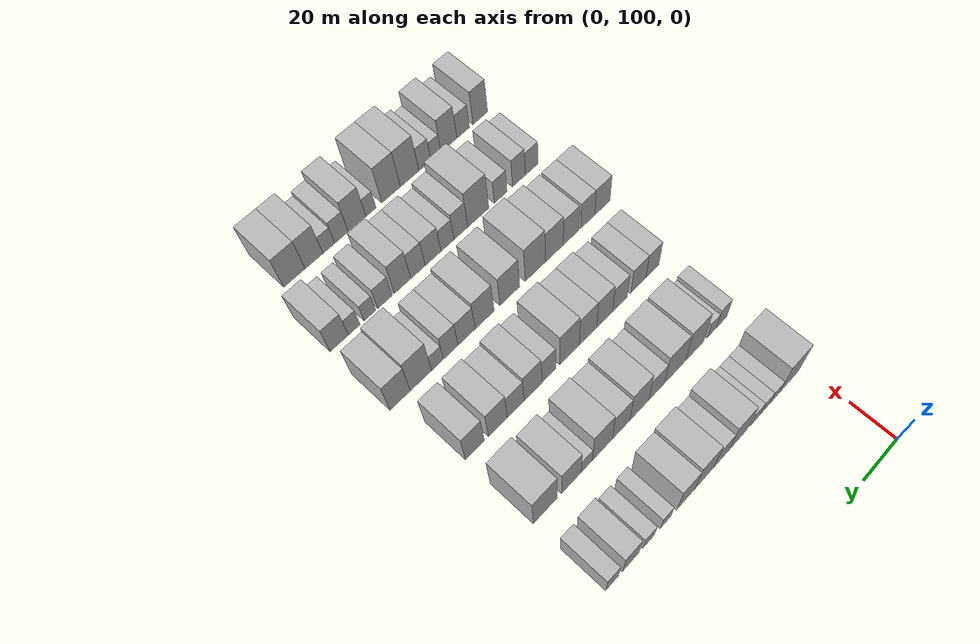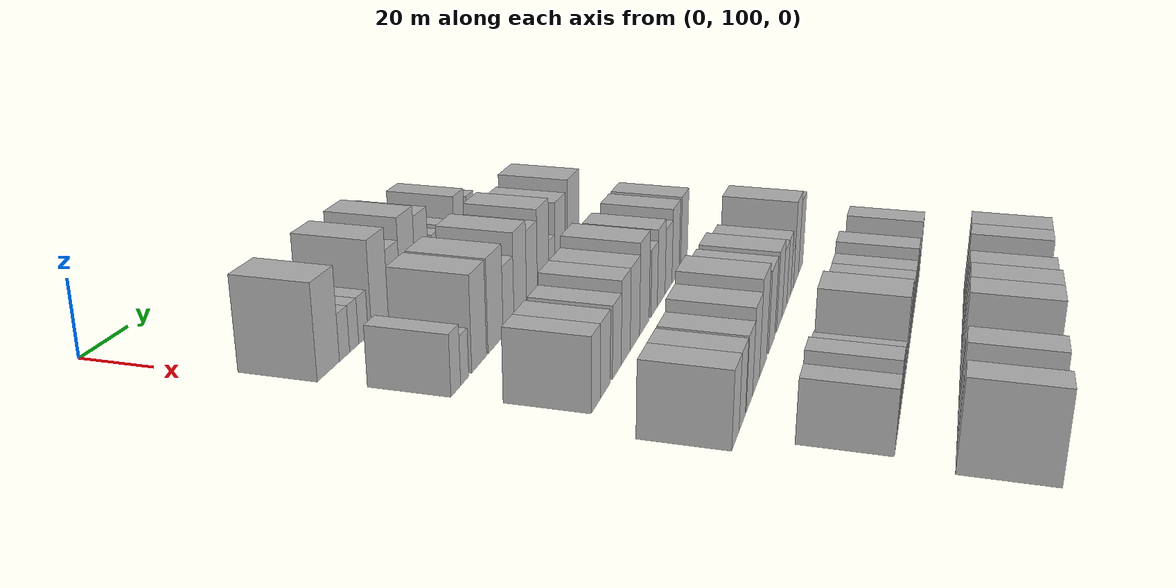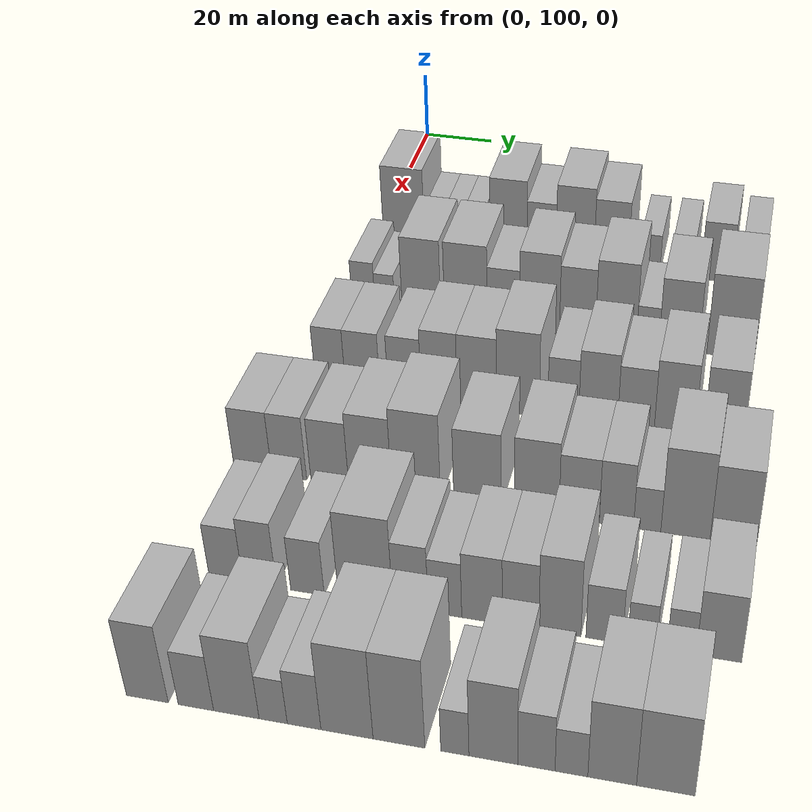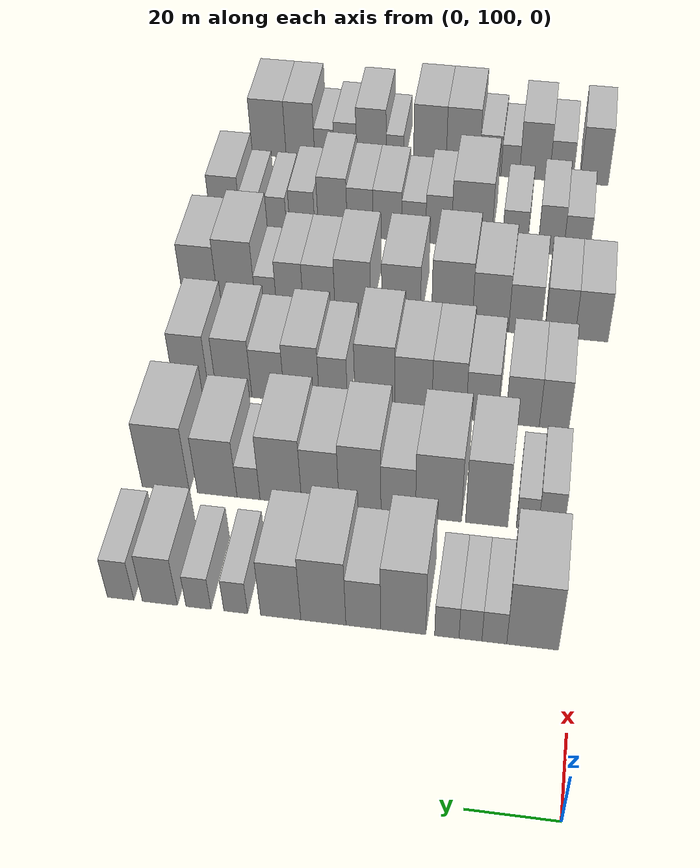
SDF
<sdf version="1.6">
 <world name="default">
  <model name="building_74">
   <static>1</static>
   <pose>50.0000 108.7821 0 0.000000 0.000000 0.000000</pose>
   <link name="link">
    <pose>0 0 12.00 0 0 0</pose>
    <collision name="collision"><geometry><box><size>20.0000 11.5517 24.0000</size></box></geometry></collision>
    <visual name="visual">
     <cast_shadows>0</cast_shadows>
     <geometry><box><size>20.0000 11.5517 24.0000</size></box></geometry>
     <material>
      <script>
       <uri>model://HANNAS_wall/materials/scripts</uri>
       <uri>model://HANNAS_wall/materials/textures</uri>
       <name>vrc/HANNAS_wall</name>
      </script>
     </material>
    </visual>
   </link>
  </model>
  <model name="building_75">
   <static>1</static>
   <pose>50.0000 117.3369 0 0.000000 0.000000 0.000000</pose>
   <link name="link">
    <pose>0 0 6.00 0 0 0</pose>
    <collision name="collision"><geometry><box><size>20.0000 5.5580 12.0000</size></box></geometry></collision>
    <visual name="visual">
     <cast_shadows>0</cast_shadows>
     <geometry><box><size>20.0000 5.5580 12.0000</size></box></geometry>
     <material>
      <script>
       <uri>model://HANNAS_wall/materials/scripts</uri>
       <uri>model://HANNAS_wall/materials/textures</uri>
       <name>vrc/HANNAS_wall</name>
      </script>
     </material>
    </visual>
   </link>
  </model>
  <model name="building_76">
   <static>1</static>
   <pose>50.0000 122.6863 0 0.000000 0.000000 0.000000</pose>
   <link name="link">
    <pose>0 0 6.00 0 0 0</pose>
    <collision name="collision"><geometry><box><size>20.0000 5.1408 12.0000</size></box></geometry></collision>
    <visual name="visual">
     <cast_shadows>0</cast_shadows>
     <geometry><box><size>20.0000 5.1408 12.0000</size></box></geometry>
     <material>
      <script>
       <uri>model://HANNAS_wall/materials/scripts</uri>
       <uri>model://HANNAS_wall/materials/textures</uri>
       <name>vrc/HANNAS_wall</name>
      </script>
     </material>
    </visual>
   </link>
  </model>
  <model name="building_77">
   <static>1</static>
   <pose>50.0000 128.0056 0 0.000000 0.000000 0.000000</pose>
   <link name="link">
    <pose>0 0 6.00 0 0 0</pose>
    <collision name="collision"><geometry><box><size>20.0000 5.4979 12.0000</size></box></geometry></collision>
    <visual name="visual">
     <cast_shadows>0</cast_shadows>
     <geometry><box><size>20.0000 5.4979 12.0000</size></box></geometry>
     <material>
      <script>
       <uri>model://HANNAS_wall/materials/scripts</uri>
       <uri>model://HANNAS_wall/materials/textures</uri>
       <name>vrc/HANNAS_wall</name>
      </script>
     </material>
    </visual>
   </link>
  </model>
  <model name="building_78">
   <static>1</static>
   <pose>50.0000 137.8556 0 0.000000 0.000000 0.000000</pose>
   <link name="link">
    <pose>0 0 12.00 0 0 0</pose>
    <collision name="collision"><geometry><box><size>20.0000 10.2020 24.0000</size></box></geometry></collision>
    <visual name="visual">
     <cast_shadows>0</cast_shadows>
     <geometry><box><size>20.0000 10.2020 24.0000</size></box></geometry>
     <material>
      <script>
       <uri>model://HANNAS_wall/materials/scripts</uri>
       <uri>model://HANNAS_wall/materials/textures</uri>
       <name>vrc/HANNAS_wall</name>
      </script>
     </material>
    </visual>
   </link>
  </model>
  <model name="building_79">
   <static>1</static>
   <pose>50.0000 146.9290 0 0.000000 0.000000 0.000000</pose>
   <link name="link">
    <pose>0 0 9.00 0 0 0</pose>
    <collision name="collision"><geometry><box><size>20.0000 7.9450 18.0000</size></box></geometry></collision>
    <visual name="visual">
     <cast_shadows>0</cast_shadows>
     <geometry><box><size>20.0000 7.9450 18.0000</size></box></geometry>
     <material>
      <script>
       <uri>model://HANNAS_wall/materials/scripts</uri>
       <uri>model://HANNAS_wall/materials/textures</uri>
       <name>vrc/HANNAS_wall</name>
      </script>
     </material>
    </visual>
   </link>
  </model>
  <model name="building_80">
   <static>1</static>
   <pose>50.0000 156.0578 0 0.000000 0.000000 0.000000</pose>
   <link name="link">
    <pose>0 0 12.00 0 0 0</pose>
    <collision name="collision"><geometry><box><size>20.0000 10.3124 24.0000</size></box></geometry></collision>
    <visual name="visual">
     <cast_shadows>0</cast_shadows>
     <geometry><box><size>20.0000 10.3124 24.0000</size></box></geometry>
     <material>
      <script>
       <uri>model://HANNAS_wall/materials/scripts</uri>
       <uri>model://HANNAS_wall/materials/textures</uri>
       <name>vrc/HANNAS_wall</name>
      </script>
     </material>
    </visual>
   </link>
  </model>
  <model name="building_81">
   <static>1</static>
   <pose>50.0000 165.8486 0 0.000000 0.000000 0.000000</pose>
   <link name="link">
    <pose>0 0 10.50 0 0 0</pose>
    <collision name="collision"><geometry><box><size>20.0000 9.2693 21.0000</size></box></geometry></collision>
    <visual name="visual">
     <cast_shadows>0</cast_shadows>
     <geometry><box><size>20.0000 9.2693 21.0000</size></box></geometry>
     <material>
      <script>
       <uri>model://HANNAS_wall/materials/scripts</uri>
       <uri>model://HANNAS_wall/materials/textures</uri>
       <name>vrc/HANNAS_wall</name>
      </script>
     </material>
    </visual>
   </link>
  </model>
  <model name="building_82">
   <static>1</static>
   <pose>50.0000 176.2390 0 0.000000 0.000000 0.000000</pose>
   <link name="link">
    <pose>0 0 6.00 0 0 0</pose>
    <collision name="collision"><geometry><box><size>20.0000 5.5116 12.0000</size></box></geometry></collision>
    <visual name="visual">
     <cast_shadows>0</cast_shadows>
     <geometry><box><size>20.0000 5.5116 12.0000</size></box></geometry>
     <material>
      <script>
       <uri>model://HANNAS_wall/materials/scripts</uri>
       <uri>model://HANNAS_wall/materials/textures</uri>
       <name>vrc/HANNAS_wall</name>
      </script>
     </material>
    </visual>
   </link>
  </model>
  <model name="building_83">
   <static>1</static>
   <pose>50.0000 184.8971 0 0.000000 0.000000 0.000000</pose>
   <link name="link">
    <pose>0 0 6.00 0 0 0</pose>
    <collision name="collision"><geometry><box><size>20.0000 5.8045 12.0000</size></box></geometry></collision>
    <visual name="visual">
     <cast_shadows>0</cast_shadows>
     <geometry><box><size>20.0000 5.8045 12.0000</size></box></geometry>
     <material>
      <script>
       <uri>model://HANNAS_wall/materials/scripts</uri>
       <uri>model://HANNAS_wall/materials/textures</uri>
       <name>vrc/HANNAS_wall</name>
      </script>
     </material>
    </visual>
   </link>
  </model>
  <model name="building_84">
   <static>1</static>
   <pose>50.0000 193.9030 0 0.000000 0.000000 0.000000</pose>
   <link name="link">
    <pose>0 0 9.00 0 0 0</pose>
    <collision name="collision"><geometry><box><size>20.0000 8.2074 18.0000</size></box></geometry></collision>
    <visual name="visual">
     <cast_shadows>0</cast_shadows>
     <geometry><box><size>20.0000 8.2074 18.0000</size></box></geometry>
     <material>
      <script>
       <uri>model://HANNAS_wall/materials/scripts</uri>
       <uri>model://HANNAS_wall/materials/textures</uri>
       <name>vrc/HANNAS_wall</name>
      </script>
     </material>
    </visual>
   </link>
  </model>
  <model name="building_85">
   <static>1</static>
   <pose>50.0000 203.1125 0 0.000000 0.000000 0.000000</pose>
   <link name="link">
    <pose>0 0 7.50 0 0 0</pose>
    <collision name="collision"><geometry><box><size>20.0000 6.2116 15.0000</size></box></geometry></collision>
    <visual name="visual">
     <cast_shadows>0</cast_shadows>
     <geometry><box><size>20.0000 6.2116 15.0000</size></box></geometry>
     <material>
      <script>
       <uri>model://HANNAS_wall/materials/scripts</uri>
       <uri>model://HANNAS_wall/materials/textures</uri>
       <name>vrc/HANNAS_wall</name>
      </script>
     </material>
    </visual>
   </link>
  </model>
  <model name="building_195">
   <static>1</static>
   <pose>82.0000 106.7155 0 0.000000 0.000000 0.000000</pose>
   <link name="link">
    <pose>0 0 7.50 0 0 0</pose>
    <collision name="collision"><geometry><box><size>20.0000 6.0641 15.0000</size></box></geometry></collision>
    <visual name="visual">
     <cast_shadows>0</cast_shadows>
     <geometry><box><size>20.0000 6.0641 15.0000</size></box></geometry>
     <material>
      <script>
       <uri>model://HANNAS_wall/materials/scripts</uri>
       <uri>model://HANNAS_wall/materials/textures</uri>
       <name>vrc/HANNAS_wall</name>
      </script>
     </material>
    </visual>
   </link>
  </model>
  <model name="building_196">
   <static>1</static>
   <pose>82.0000 112.3480 0 0.000000 0.000000 0.000000</pose>
   <link name="link">
    <pose>0 0 6.00 0 0 0</pose>
    <collision name="collision"><geometry><box><size>20.0000 5.2009 12.0000</size></box></geometry></collision>
    <visual name="visual">
     <cast_shadows>0</cast_shadows>
     <geometry><box><size>20.0000 5.2009 12.0000</size></box></geometry>
     <material>
      <script>
       <uri>model://HANNAS_wall/materials/scripts</uri>
       <uri>model://HANNAS_wall/materials/textures</uri>
       <name>vrc/HANNAS_wall</name>
      </script>
     </material>
    </visual>
   </link>
  </model>
  <model name="building_197">
   <static>1</static>
   <pose>82.0000 122.0043 0 0.000000 0.000000 0.000000</pose>
   <link name="link">
    <pose>0 0 12.00 0 0 0</pose>
    <collision name="collision"><geometry><box><size>20.0000 10.1119 24.0000</size></box></geometry></collision>
    <visual name="visual">
     <cast_shadows>0</cast_shadows>
     <geometry><box><size>20.0000 10.1119 24.0000</size></box></geometry>
     <material>
      <script>
       <uri>model://HANNAS_wall/materials/scripts</uri>
       <uri>model://HANNAS_wall/materials/textures</uri>
       <name>vrc/HANNAS_wall</name>
      </script>
     </material>
    </visual>
   </link>
  </model>
  <model name="building_198">
   <static>1</static>
   <pose>82.0000 133.5884 0 0.000000 0.000000 0.000000</pose>
   <link name="link">
    <pose>0 0 12.00 0 0 0</pose>
    <collision name="collision"><geometry><box><size>20.0000 11.0563 24.0000</size></box></geometry></collision>
    <visual name="visual">
     <cast_shadows>0</cast_shadows>
     <geometry><box><size>20.0000 11.0563 24.0000</size></box></geometry>
     <material>
      <script>
       <uri>model://HANNAS_wall/materials/scripts</uri>
       <uri>model://HANNAS_wall/materials/textures</uri>
       <name>vrc/HANNAS_wall</name>
      </script>
     </material>
    </visual>
   </link>
  </model>
  <model name="building_199">
   <static>1</static>
   <pose>82.0000 143.2935 0 0.000000 0.000000 0.000000</pose>
   <link name="link">
    <pose>0 0 9.00 0 0 0</pose>
    <collision name="collision"><geometry><box><size>20.0000 8.3539 18.0000</size></box></geometry></collision>
    <visual name="visual">
     <cast_shadows>0</cast_shadows>
     <geometry><box><size>20.0000 8.3539 18.0000</size></box></geometry>
     <material>
      <script>
       <uri>model://HANNAS_wall/materials/scripts</uri>
       <uri>model://HANNAS_wall/materials/textures</uri>
       <name>vrc/HANNAS_wall</name>
      </script>
     </material>
    </visual>
   </link>
  </model>
  <model name="building_200">
   <static>1</static>
   <pose>82.0000 152.5615 0 0.000000 0.000000 0.000000</pose>
   <link name="link">
    <pose>0 0 12.00 0 0 0</pose>
    <collision name="collision"><geometry><box><size>20.0000 10.1821 24.0000</size></box></geometry></collision>
    <visual name="visual">
     <cast_shadows>0</cast_shadows>
     <geometry><box><size>20.0000 10.1821 24.0000</size></box></geometry>
     <material>
      <script>
       <uri>model://HANNAS_wall/materials/scripts</uri>
       <uri>model://HANNAS_wall/materials/textures</uri>
       <name>vrc/HANNAS_wall</name>
      </script>
     </material>
    </visual>
   </link>
  </model>
  <model name="building_201">
   <static>1</static>
   <pose>82.0000 162.2130 0 0.000000 0.000000 0.000000</pose>
   <link name="link">
    <pose>0 0 10.50 0 0 0</pose>
    <collision name="collision"><geometry><box><size>20.0000 9.1208 21.0000</size></box></geometry></collision>
    <visual name="visual">
     <cast_shadows>0</cast_shadows>
     <geometry><box><size>20.0000 9.1208 21.0000</size></box></geometry>
     <material>
      <script>
       <uri>model://HANNAS_wall/materials/scripts</uri>
       <uri>model://HANNAS_wall/materials/textures</uri>
       <name>vrc/HANNAS_wall</name>
      </script>
     </material>
    </visual>
   </link>
  </model>
  <model name="building_202">
   <static>1</static>
   <pose>82.0000 171.9114 0 0.000000 0.000000 0.000000</pose>
   <link name="link">
    <pose>0 0 12.00 0 0 0</pose>
    <collision name="collision"><geometry><box><size>20.0000 10.2761 24.0000</size></box></geometry></collision>
    <visual name="visual">
     <cast_shadows>0</cast_shadows>
     <geometry><box><size>20.0000 10.2761 24.0000</size></box></geometry>
     <material>
      <script>
       <uri>model://HANNAS_wall/materials/scripts</uri>
       <uri>model://HANNAS_wall/materials/textures</uri>
       <name>vrc/HANNAS_wall</name>
      </script>
     </material>
    </visual>
   </link>
  </model>
  <model name="building_203">
   <static>1</static>
   <pose>82.0000 179.8812 0 0.000000 0.000000 0.000000</pose>
   <link name="link">
    <pose>0 0 6.00 0 0 0</pose>
    <collision name="collision"><geometry><box><size>20.0000 5.6636 12.0000</size></box></geometry></collision>
    <visual name="visual">
     <cast_shadows>0</cast_shadows>
     <geometry><box><size>20.0000 5.6636 12.0000</size></box></geometry>
     <material>
      <script>
       <uri>model://HANNAS_wall/materials/scripts</uri>
       <uri>model://HANNAS_wall/materials/textures</uri>
       <name>vrc/HANNAS_wall</name>
      </script>
     </material>
    </visual>
   </link>
  </model>
  <model name="building_204">
   <static>1</static>
   <pose>82.0000 187.6397 0 0.000000 0.000000 0.000000</pose>
   <link name="link">
    <pose>0 0 10.50 0 0 0</pose>
    <collision name="collision"><geometry><box><size>20.0000 9.8532 21.0000</size></box></geometry></collision>
    <visual name="visual">
     <cast_shadows>0</cast_shadows>
     <geometry><box><size>20.0000 9.8532 21.0000</size></box></geometry>
     <material>
      <script>
       <uri>model://HANNAS_wall/materials/scripts</uri>
       <uri>model://HANNAS_wall/materials/textures</uri>
       <name>vrc/HANNAS_wall</name>
      </script>
     </material>
    </visual>
   </link>
  </model>
  <model name="building_205">
   <static>1</static>
   <pose>82.0000 200.4413 0 0.000000 0.000000 0.000000</pose>
   <link name="link">
    <pose>0 0 12.00 0 0 0</pose>
    <collision name="collision"><geometry><box><size>20.0000 11.7501 24.0000</size></box></geometry></collision>
    <visual name="visual">
     <cast_shadows>0</cast_shadows>
     <geometry><box><size>20.0000 11.7501 24.0000</size></box></geometry>
     <material>
      <script>
       <uri>model://HANNAS_wall/materials/scripts</uri>
       <uri>model://HANNAS_wall/materials/textures</uri>
       <name>vrc/HANNAS_wall</name>
      </script>
     </material>
    </visual>
   </link>
  </model>
  <model name="building_318">
   <static>1</static>
   <pose>114.0000 107.8709 0 0.000000 0.000000 0.000000</pose>
   <link name="link">
    <pose>0 0 9.00 0 0 0</pose>
    <collision name="collision"><geometry><box><size>20.0000 7.4623 18.0000</size></box></geometry></collision>
    <visual name="visual">
     <cast_shadows>0</cast_shadows>
     <geometry><box><size>20.0000 7.4623 18.0000</size></box></geometry>
     <material>
      <script>
       <uri>model://HANNAS_wall/materials/scripts</uri>
       <uri>model://HANNAS_wall/materials/textures</uri>
       <name>vrc/HANNAS_wall</name>
      </script>
     </material>
    </visual>
   </link>
  </model>
  <model name="building_319">
   <static>1</static>
   <pose>114.0000 115.8743 0 0.000000 0.000000 0.000000</pose>
   <link name="link">
    <pose>0 0 9.00 0 0 0</pose>
    <collision name="collision"><geometry><box><size>20.0000 8.5445 18.0000</size></box></geometry></collision>
    <visual name="visual">
     <cast_shadows>0</cast_shadows>
     <geometry><box><size>20.0000 8.5445 18.0000</size></box></geometry>
     <material>
      <script>
       <uri>model://HANNAS_wall/materials/scripts</uri>
       <uri>model://HANNAS_wall/materials/textures</uri>
       <name>vrc/HANNAS_wall</name>
      </script>
     </material>
    </visual>
   </link>
  </model>
  <model name="building_320">
   <static>1</static>
   <pose>114.0000 126.1958 0 0.000000 0.000000 0.000000</pose>
   <link name="link">
    <pose>0 0 9.00 0 0 0</pose>
    <collision name="collision"><geometry><box><size>20.0000 8.0985 18.0000</size></box></geometry></collision>
    <visual name="visual">
     <cast_shadows>0</cast_shadows>
     <geometry><box><size>20.0000 8.0985 18.0000</size></box></geometry>
     <material>
      <script>
       <uri>model://HANNAS_wall/materials/scripts</uri>
       <uri>model://HANNAS_wall/materials/textures</uri>
       <name>vrc/HANNAS_wall</name>
      </script>
     </material>
    </visual>
   </link>
  </model>
  <model name="building_321">
   <static>1</static>
   <pose>114.0000 134.6047 0 0.000000 0.000000 0.000000</pose>
   <link name="link">
    <pose>0 0 10.50 0 0 0</pose>
    <collision name="collision"><geometry><box><size>20.0000 8.7194 21.0000</size></box></geometry></collision>
    <visual name="visual">
     <cast_shadows>0</cast_shadows>
     <geometry><box><size>20.0000 8.7194 21.0000</size></box></geometry>
     <material>
      <script>
       <uri>model://HANNAS_wall/materials/scripts</uri>
       <uri>model://HANNAS_wall/materials/textures</uri>
       <name>vrc/HANNAS_wall</name>
      </script>
     </material>
    </visual>
   </link>
  </model>
  <model name="building_322">
   <static>1</static>
   <pose>114.0000 143.6874 0 0.000000 0.000000 0.000000</pose>
   <link name="link">
    <pose>0 0 10.50 0 0 0</pose>
    <collision name="collision"><geometry><box><size>20.0000 9.4460 21.0000</size></box></geometry></collision>
    <visual name="visual">
     <cast_shadows>0</cast_shadows>
     <geometry><box><size>20.0000 9.4460 21.0000</size></box></geometry>
     <material>
      <script>
       <uri>model://HANNAS_wall/materials/scripts</uri>
       <uri>model://HANNAS_wall/materials/textures</uri>
       <name>vrc/HANNAS_wall</name>
      </script>
     </material>
    </visual>
   </link>
  </model>
  <model name="building_323">
   <static>1</static>
   <pose>114.0000 153.5409 0 0.000000 0.000000 0.000000</pose>
   <link name="link">
    <pose>0 0 12.00 0 0 0</pose>
    <collision name="collision"><geometry><box><size>20.0000 10.2610 24.0000</size></box></geometry></collision>
    <visual name="visual">
     <cast_shadows>0</cast_shadows>
     <geometry><box><size>20.0000 10.2610 24.0000</size></box></geometry>
     <material>
      <script>
       <uri>model://HANNAS_wall/materials/scripts</uri>
       <uri>model://HANNAS_wall/materials/textures</uri>
       <name>vrc/HANNAS_wall</name>
      </script>
     </material>
    </visual>
   </link>
  </model>
  <model name="building_324">
   <static>1</static>
   <pose>114.0000 164.3223 0 0.000000 0.000000 0.000000</pose>
   <link name="link">
    <pose>0 0 9.00 0 0 0</pose>
    <collision name="collision"><geometry><box><size>20.0000 7.3020 18.0000</size></box></geometry></collision>
    <visual name="visual">
     <cast_shadows>0</cast_shadows>
     <geometry><box><size>20.0000 7.3020 18.0000</size></box></geometry>
     <material>
      <script>
       <uri>model://HANNAS_wall/materials/scripts</uri>
       <uri>model://HANNAS_wall/materials/textures</uri>
       <name>vrc/HANNAS_wall</name>
      </script>
     </material>
    </visual>
   </link>
  </model>
  <model name="building_325">
   <static>1</static>
   <pose>114.0000 172.5319 0 0.000000 0.000000 0.000000</pose>
   <link name="link">
    <pose>0 0 10.50 0 0 0</pose>
    <collision name="collision"><geometry><box><size>20.0000 9.1172 21.0000</size></box></geometry></collision>
    <visual name="visual">
     <cast_shadows>0</cast_shadows>
     <geometry><box><size>20.0000 9.1172 21.0000</size></box></geometry>
     <material>
      <script>
       <uri>model://HANNAS_wall/materials/scripts</uri>
       <uri>model://HANNAS_wall/materials/textures</uri>
       <name>vrc/HANNAS_wall</name>
      </script>
     </material>
    </visual>
   </link>
  </model>
  <model name="building_326">
   <static>1</static>
   <pose>114.0000 181.3450 0 0.000000 0.000000 0.000000</pose>
   <link name="link">
    <pose>0 0 9.00 0 0 0</pose>
    <collision name="collision"><geometry><box><size>20.0000 8.5088 18.0000</size></box></geometry></collision>
    <visual name="visual">
     <cast_shadows>0</cast_shadows>
     <geometry><box><size>20.0000 8.5088 18.0000</size></box></geometry>
     <material>
      <script>
       <uri>model://HANNAS_wall/materials/scripts</uri>
       <uri>model://HANNAS_wall/materials/textures</uri>
       <name>vrc/HANNAS_wall</name>
      </script>
     </material>
    </visual>
   </link>
  </model>
  <model name="building_327">
   <static>1</static>
   <pose>114.0000 190.2698 0 0.000000 0.000000 0.000000</pose>
   <link name="link">
    <pose>0 0 10.50 0 0 0</pose>
    <collision name="collision"><geometry><box><size>20.0000 9.3409 21.0000</size></box></geometry></collision>
    <visual name="visual">
     <cast_shadows>0</cast_shadows>
     <geometry><box><size>20.0000 9.3409 21.0000</size></box></geometry>
     <material>
      <script>
       <uri>model://HANNAS_wall/materials/scripts</uri>
       <uri>model://HANNAS_wall/materials/textures</uri>
       <name>vrc/HANNAS_wall</name>
      </script>
     </material>
    </visual>
   </link>
  </model>
  <model name="building_328">
   <static>1</static>
   <pose>114.0000 201.5316 0 0.000000 0.000000 0.000000</pose>
   <link name="link">
    <pose>0 0 10.50 0 0 0</pose>
    <collision name="collision"><geometry><box><size>20.0000 9.1827 21.0000</size></box></geometry></collision>
    <visual name="visual">
     <cast_shadows>0</cast_shadows>
     <geometry><box><size>20.0000 9.1827 21.0000</size></box></geometry>
     <material>
      <script>
       <uri>model://HANNAS_wall/materials/scripts</uri>
       <uri>model://HANNAS_wall/materials/textures</uri>
       <name>vrc/HANNAS_wall</name>
      </script>
     </material>
    </visual>
   </link>
  </model>
  <model name="building_434">
   <static>1</static>
   <pose>146.0000 99.8166 0 0.000000 0.000000 0.000000</pose>
   <link name="link">
    <pose>0 0 9.00 0 0 0</pose>
    <collision name="collision"><geometry><box><size>20.0000 8.8242 18.0000</size></box></geometry></collision>
    <visual name="visual">
     <cast_shadows>0</cast_shadows>
     <geometry><box><size>20.0000 8.8242 18.0000</size></box></geometry>
     <material>
      <script>
       <uri>model://HANNAS_wall/materials/scripts</uri>
       <uri>model://HANNAS_wall/materials/textures</uri>
       <name>vrc/HANNAS_wall</name>
      </script>
     </material>
    </visual>
   </link>
  </model>
  <model name="building_435">
   <static>1</static>
   <pose>146.0000 108.2772 0 0.000000 0.000000 0.000000</pose>
   <link name="link">
    <pose>0 0 9.00 0 0 0</pose>
    <collision name="collision"><geometry><box><size>20.0000 8.0969 18.0000</size></box></geometry></collision>
    <visual name="visual">
     <cast_shadows>0</cast_shadows>
     <geometry><box><size>20.0000 8.0969 18.0000</size></box></geometry>
     <material>
      <script>
       <uri>model://HANNAS_wall/materials/scripts</uri>
       <uri>model://HANNAS_wall/materials/textures</uri>
       <name>vrc/HANNAS_wall</name>
      </script>
     </material>
    </visual>
   </link>
  </model>
  <model name="building_436">
   <static>1</static>
   <pose>146.0000 117.6802 0 0.000000 0.000000 0.000000</pose>
   <link name="link">
    <pose>0 0 9.00 0 0 0</pose>
    <collision name="collision"><geometry><box><size>20.0000 8.7090 18.0000</size></box></geometry></collision>
    <visual name="visual">
     <cast_shadows>0</cast_shadows>
     <geometry><box><size>20.0000 8.7090 18.0000</size></box></geometry>
     <material>
      <script>
       <uri>model://HANNAS_wall/materials/scripts</uri>
       <uri>model://HANNAS_wall/materials/textures</uri>
       <name>vrc/HANNAS_wall</name>
      </script>
     </material>
    </visual>
   </link>
  </model>
  <model name="building_437">
   <static>1</static>
   <pose>146.0000 126.9446 0 0.000000 0.000000 0.000000</pose>
   <link name="link">
    <pose>0 0 10.50 0 0 0</pose>
    <collision name="collision"><geometry><box><size>20.0000 9.8199 21.0000</size></box></geometry></collision>
    <visual name="visual">
     <cast_shadows>0</cast_shadows>
     <geometry><box><size>20.0000 9.8199 21.0000</size></box></geometry>
     <material>
      <script>
       <uri>model://HANNAS_wall/materials/scripts</uri>
       <uri>model://HANNAS_wall/materials/textures</uri>
       <name>vrc/HANNAS_wall</name>
      </script>
     </material>
    </visual>
   </link>
  </model>
  <model name="building_438">
   <static>1</static>
   <pose>146.0000 137.3584 0 0.000000 0.000000 0.000000</pose>
   <link name="link">
    <pose>0 0 12.00 0 0 0</pose>
    <collision name="collision"><geometry><box><size>20.0000 11.0076 24.0000</size></box></geometry></collision>
    <visual name="visual">
     <cast_shadows>0</cast_shadows>
     <geometry><box><size>20.0000 11.0076 24.0000</size></box></geometry>
     <material>
      <script>
       <uri>model://HANNAS_wall/materials/scripts</uri>
       <uri>model://HANNAS_wall/materials/textures</uri>
       <name>vrc/HANNAS_wall</name>
      </script>
     </material>
    </visual>
   </link>
  </model>
  <model name="building_439">
   <static>1</static>
   <pose>146.0000 151.1048 0 0.000000 0.000000 0.000000</pose>
   <link name="link">
    <pose>0 0 10.50 0 0 0</pose>
    <collision name="collision"><geometry><box><size>20.0000 10.4850 21.0000</size></box></geometry></collision>
    <visual name="visual">
     <cast_shadows>0</cast_shadows>
     <geometry><box><size>20.0000 10.4850 21.0000</size></box></geometry>
     <material>
      <script>
       <uri>model://HANNAS_wall/materials/scripts</uri>
       <uri>model://HANNAS_wall/materials/textures</uri>
       <name>vrc/HANNAS_wall</name>
      </script>
     </material>
    </visual>
   </link>
  </model>
  <model name="building_440">
   <static>1</static>
   <pose>146.0000 164.2531 0 0.000000 0.000000 0.000000</pose>
   <link name="link">
    <pose>0 0 10.50 0 0 0</pose>
    <collision name="collision"><geometry><box><size>20.0000 9.8117 21.0000</size></box></geometry></collision>
    <visual name="visual">
     <cast_shadows>0</cast_shadows>
     <geometry><box><size>20.0000 9.8117 21.0000</size></box></geometry>
     <material>
      <script>
       <uri>model://HANNAS_wall/materials/scripts</uri>
       <uri>model://HANNAS_wall/materials/textures</uri>
       <name>vrc/HANNAS_wall</name>
      </script>
     </material>
    </visual>
   </link>
  </model>
  <model name="building_441">
   <static>1</static>
   <pose>146.0000 173.5276 0 0.000000 0.000000 0.000000</pose>
   <link name="link">
    <pose>0 0 9.00 0 0 0</pose>
    <collision name="collision"><geometry><box><size>20.0000 8.7372 18.0000</size></box></geometry></collision>
    <visual name="visual">
     <cast_shadows>0</cast_shadows>
     <geometry><box><size>20.0000 8.7372 18.0000</size></box></geometry>
     <material>
      <script>
       <uri>model://HANNAS_wall/materials/scripts</uri>
       <uri>model://HANNAS_wall/materials/textures</uri>
       <name>vrc/HANNAS_wall</name>
      </script>
     </material>
    </visual>
   </link>
  </model>
  <model name="building_442">
   <static>1</static>
   <pose>146.0000 181.5960 0 0.000000 0.000000 0.000000</pose>
   <link name="link">
    <pose>0 0 9.00 0 0 0</pose>
    <collision name="collision"><geometry><box><size>20.0000 7.3995 18.0000</size></box></geometry></collision>
    <visual name="visual">
     <cast_shadows>0</cast_shadows>
     <geometry><box><size>20.0000 7.3995 18.0000</size></box></geometry>
     <material>
      <script>
       <uri>model://HANNAS_wall/materials/scripts</uri>
       <uri>model://HANNAS_wall/materials/textures</uri>
       <name>vrc/HANNAS_wall</name>
      </script>
     </material>
    </visual>
   </link>
  </model>
  <model name="building_443">
   <static>1</static>
   <pose>146.0000 188.2167 0 0.000000 0.000000 0.000000</pose>
   <link name="link">
    <pose>0 0 6.00 0 0 0</pose>
    <collision name="collision"><geometry><box><size>20.0000 5.8419 12.0000</size></box></geometry></collision>
    <visual name="visual">
     <cast_shadows>0</cast_shadows>
     <geometry><box><size>20.0000 5.8419 12.0000</size></box></geometry>
     <material>
      <script>
       <uri>model://HANNAS_wall/materials/scripts</uri>
       <uri>model://HANNAS_wall/materials/textures</uri>
       <name>vrc/HANNAS_wall</name>
      </script>
     </material>
    </visual>
   </link>
  </model>
  <model name="building_444">
   <static>1</static>
   <pose>146.0000 196.3773 0 0.000000 0.000000 0.000000</pose>
   <link name="link">
    <pose>0 0 12.00 0 0 0</pose>
    <collision name="collision"><geometry><box><size>20.0000 10.4793 24.0000</size></box></geometry></collision>
    <visual name="visual">
     <cast_shadows>0</cast_shadows>
     <geometry><box><size>20.0000 10.4793 24.0000</size></box></geometry>
     <material>
      <script>
       <uri>model://HANNAS_wall/materials/scripts</uri>
       <uri>model://HANNAS_wall/materials/textures</uri>
       <name>vrc/HANNAS_wall</name>
      </script>
     </material>
    </visual>
   </link>
  </model>
  <model name="building_445">
   <static>1</static>
   <pose>146.0000 206.5132 0 0.000000 0.000000 0.000000</pose>
   <link name="link">
    <pose>0 0 10.50 0 0 0</pose>
    <collision name="collision"><geometry><box><size>20.0000 9.7925 21.0000</size></box></geometry></collision>
    <visual name="visual">
     <cast_shadows>0</cast_shadows>
     <geometry><box><size>20.0000 9.7925 21.0000</size></box></geometry>
     <material>
      <script>
       <uri>model://HANNAS_wall/materials/scripts</uri>
       <uri>model://HANNAS_wall/materials/textures</uri>
       <name>vrc/HANNAS_wall</name>
      </script>
     </material>
    </visual>
   </link>
  </model>
  <model name="building_551">
   <static>1</static>
   <pose>178.0000 105.4957 0 0.000000 0.000000 0.000000</pose>
   <link name="link">
    <pose>0 0 7.50 0 0 0</pose>
    <collision name="collision"><geometry><box><size>20.0000 7.3308 15.0000</size></box></geometry></collision>
    <visual name="visual">
     <cast_shadows>0</cast_shadows>
     <geometry><box><size>20.0000 7.3308 15.0000</size></box></geometry>
     <material>
      <script>
       <uri>model://HANNAS_wall/materials/scripts</uri>
       <uri>model://HANNAS_wall/materials/textures</uri>
       <name>vrc/HANNAS_wall</name>
      </script>
     </material>
    </visual>
   </link>
  </model>
  <model name="building_552">
   <static>1</static>
   <pose>178.0000 112.7806 0 0.000000 0.000000 0.000000</pose>
   <link name="link">
    <pose>0 0 9.00 0 0 0</pose>
    <collision name="collision"><geometry><box><size>20.0000 7.2388 18.0000</size></box></geometry></collision>
    <visual name="visual">
     <cast_shadows>0</cast_shadows>
     <geometry><box><size>20.0000 7.2388 18.0000</size></box></geometry>
     <material>
      <script>
       <uri>model://HANNAS_wall/materials/scripts</uri>
       <uri>model://HANNAS_wall/materials/textures</uri>
       <name>vrc/HANNAS_wall</name>
      </script>
     </material>
    </visual>
   </link>
  </model>
  <model name="building_553">
   <static>1</static>
   <pose>178.0000 122.9649 0 0.000000 0.000000 0.000000</pose>
   <link name="link">
    <pose>0 0 7.50 0 0 0</pose>
    <collision name="collision"><geometry><box><size>20.0000 7.1299 15.0000</size></box></geometry></collision>
    <visual name="visual">
     <cast_shadows>0</cast_shadows>
     <geometry><box><size>20.0000 7.1299 15.0000</size></box></geometry>
     <material>
      <script>
       <uri>model://HANNAS_wall/materials/scripts</uri>
       <uri>model://HANNAS_wall/materials/textures</uri>
       <name>vrc/HANNAS_wall</name>
      </script>
     </material>
    </visual>
   </link>
  </model>
  <model name="building_554">
   <static>1</static>
   <pose>178.0000 135.2392 0 0.000000 0.000000 0.000000</pose>
   <link name="link">
    <pose>0 0 12.00 0 0 0</pose>
    <collision name="collision"><geometry><box><size>20.0000 11.4187 24.0000</size></box></geometry></collision>
    <visual name="visual">
     <cast_shadows>0</cast_shadows>
     <geometry><box><size>20.0000 11.4187 24.0000</size></box></geometry>
     <material>
      <script>
       <uri>model://HANNAS_wall/materials/scripts</uri>
       <uri>model://HANNAS_wall/materials/textures</uri>
       <name>vrc/HANNAS_wall</name>
      </script>
     </material>
    </visual>
   </link>
  </model>
  <model name="building_555">
   <static>1</static>
   <pose>178.0000 144.6277 0 0.000000 0.000000 0.000000</pose>
   <link name="link">
    <pose>0 0 9.00 0 0 0</pose>
    <collision name="collision"><geometry><box><size>20.0000 7.3584 18.0000</size></box></geometry></collision>
    <visual name="visual">
     <cast_shadows>0</cast_shadows>
     <geometry><box><size>20.0000 7.3584 18.0000</size></box></geometry>
     <material>
      <script>
       <uri>model://HANNAS_wall/materials/scripts</uri>
       <uri>model://HANNAS_wall/materials/textures</uri>
       <name>vrc/HANNAS_wall</name>
      </script>
     </material>
    </visual>
   </link>
  </model>
  <model name="building_556">
   <static>1</static>
   <pose>178.0000 151.7474 0 0.000000 0.000000 0.000000</pose>
   <link name="link">
    <pose>0 0 7.50 0 0 0</pose>
    <collision name="collision"><geometry><box><size>20.0000 6.8808 15.0000</size></box></geometry></collision>
    <visual name="visual">
     <cast_shadows>0</cast_shadows>
     <geometry><box><size>20.0000 6.8808 15.0000</size></box></geometry>
     <material>
      <script>
       <uri>model://HANNAS_wall/materials/scripts</uri>
       <uri>model://HANNAS_wall/materials/textures</uri>
       <name>vrc/HANNAS_wall</name>
      </script>
     </material>
    </visual>
   </link>
  </model>
  <model name="building_557">
   <static>1</static>
   <pose>178.0000 159.3167 0 0.000000 0.000000 0.000000</pose>
   <link name="link">
    <pose>0 0 9.00 0 0 0</pose>
    <collision name="collision"><geometry><box><size>20.0000 8.2579 18.0000</size></box></geometry></collision>
    <visual name="visual">
     <cast_shadows>0</cast_shadows>
     <geometry><box><size>20.0000 8.2579 18.0000</size></box></geometry>
     <material>
      <script>
       <uri>model://HANNAS_wall/materials/scripts</uri>
       <uri>model://HANNAS_wall/materials/textures</uri>
       <name>vrc/HANNAS_wall</name>
      </script>
     </material>
    </visual>
   </link>
  </model>
  <model name="building_558">
   <static>1</static>
   <pose>178.0000 167.1591 0 0.000000 0.000000 0.000000</pose>
   <link name="link">
    <pose>0 0 9.00 0 0 0</pose>
    <collision name="collision"><geometry><box><size>20.0000 7.4269 18.0000</size></box></geometry></collision>
    <visual name="visual">
     <cast_shadows>0</cast_shadows>
     <geometry><box><size>20.0000 7.4269 18.0000</size></box></geometry>
     <material>
      <script>
       <uri>model://HANNAS_wall/materials/scripts</uri>
       <uri>model://HANNAS_wall/materials/textures</uri>
       <name>vrc/HANNAS_wall</name>
      </script>
     </material>
    </visual>
   </link>
  </model>
  <model name="building_559">
   <static>1</static>
   <pose>178.0000 175.0858 0 0.000000 0.000000 0.000000</pose>
   <link name="link">
    <pose>0 0 10.50 0 0 0</pose>
    <collision name="collision"><geometry><box><size>20.0000 8.4264 21.0000</size></box></geometry></collision>
    <visual name="visual">
     <cast_shadows>0</cast_shadows>
     <geometry><box><size>20.0000 8.4264 21.0000</size></box></geometry>
     <material>
      <script>
       <uri>model://HANNAS_wall/materials/scripts</uri>
       <uri>model://HANNAS_wall/materials/textures</uri>
       <name>vrc/HANNAS_wall</name>
      </script>
     </material>
    </visual>
   </link>
  </model>
  <model name="building_560">
   <static>1</static>
   <pose>178.0000 183.9455 0 0.000000 0.000000 0.000000</pose>
   <link name="link">
    <pose>0 0 7.50 0 0 0</pose>
    <collision name="collision"><geometry><box><size>20.0000 7.2930 15.0000</size></box></geometry></collision>
    <visual name="visual">
     <cast_shadows>0</cast_shadows>
     <geometry><box><size>20.0000 7.2930 15.0000</size></box></geometry>
     <material>
      <script>
       <uri>model://HANNAS_wall/materials/scripts</uri>
       <uri>model://HANNAS_wall/materials/textures</uri>
       <name>vrc/HANNAS_wall</name>
      </script>
     </material>
    </visual>
   </link>
  </model>
  <model name="building_561">
   <static>1</static>
   <pose>178.0000 191.4495 0 0.000000 0.000000 0.000000</pose>
   <link name="link">
    <pose>0 0 6.00 0 0 0</pose>
    <collision name="collision"><geometry><box><size>20.0000 5.7151 12.0000</size></box></geometry></collision>
    <visual name="visual">
     <cast_shadows>0</cast_shadows>
     <geometry><box><size>20.0000 5.7151 12.0000</size></box></geometry>
     <material>
      <script>
       <uri>model://HANNAS_wall/materials/scripts</uri>
       <uri>model://HANNAS_wall/materials/textures</uri>
       <name>vrc/HANNAS_wall</name>
      </script>
     </material>
    </visual>
   </link>
  </model>
  <model name="building_562">
   <static>1</static>
   <pose>178.0000 199.1558 0 0.000000 0.000000 0.000000</pose>
   <link name="link">
    <pose>0 0 6.00 0 0 0</pose>
    <collision name="collision"><geometry><box><size>20.0000 5.6975 12.0000</size></box></geometry></collision>
    <visual name="visual">
     <cast_shadows>0</cast_shadows>
     <geometry><box><size>20.0000 5.6975 12.0000</size></box></geometry>
     <material>
      <script>
       <uri>model://HANNAS_wall/materials/scripts</uri>
       <uri>model://HANNAS_wall/materials/textures</uri>
       <name>vrc/HANNAS_wall</name>
      </script>
     </material>
    </visual>
   </link>
  </model>
  <model name="building_563">
   <static>1</static>
   <pose>178.0000 206.4128 0 0.000000 0.000000 0.000000</pose>
   <link name="link">
    <pose>0 0 9.00 0 0 0</pose>
    <collision name="collision"><geometry><box><size>20.0000 8.8165 18.0000</size></box></geometry></collision>
    <visual name="visual">
     <cast_shadows>0</cast_shadows>
     <geometry><box><size>20.0000 8.8165 18.0000</size></box></geometry>
     <material>
      <script>
       <uri>model://HANNAS_wall/materials/scripts</uri>
       <uri>model://HANNAS_wall/materials/textures</uri>
       <name>vrc/HANNAS_wall</name>
      </script>
     </material>
    </visual>
   </link>
  </model>
  <model name="building_669">
   <static>1</static>
   <pose>210.0000 101.8225 0 0.000000 0.000000 0.000000</pose>
   <link name="link">
    <pose>0 0 10.50 0 0 0</pose>
    <collision name="collision"><geometry><box><size>20.0000 8.4049 21.0000</size></box></geometry></collision>
    <visual name="visual">
     <cast_shadows>0</cast_shadows>
     <geometry><box><size>20.0000 8.4049 21.0000</size></box></geometry>
     <material>
      <script>
       <uri>model://HANNAS_wall/materials/scripts</uri>
       <uri>model://HANNAS_wall/materials/textures</uri>
       <name>vrc/HANNAS_wall</name>
      </script>
     </material>
    </visual>
   </link>
  </model>
  <model name="building_670">
   <static>1</static>
   <pose>210.0000 111.5394 0 0.000000 0.000000 0.000000</pose>
   <link name="link">
    <pose>0 0 7.50 0 0 0</pose>
    <collision name="collision"><geometry><box><size>20.0000 7.0289 15.0000</size></box></geometry></collision>
    <visual name="visual">
     <cast_shadows>0</cast_shadows>
     <geometry><box><size>20.0000 7.0289 15.0000</size></box></geometry>
     <material>
      <script>
       <uri>model://HANNAS_wall/materials/scripts</uri>
       <uri>model://HANNAS_wall/materials/textures</uri>
       <name>vrc/HANNAS_wall</name>
      </script>
     </material>
    </visual>
   </link>
  </model>
  <model name="building_671">
   <static>1</static>
   <pose>210.0000 119.5337 0 0.000000 0.000000 0.000000</pose>
   <link name="link">
    <pose>0 0 10.50 0 0 0</pose>
    <collision name="collision"><geometry><box><size>20.0000 8.9596 21.0000</size></box></geometry></collision>
    <visual name="visual">
     <cast_shadows>0</cast_shadows>
     <geometry><box><size>20.0000 8.9596 21.0000</size></box></geometry>
     <material>
      <script>
       <uri>model://HANNAS_wall/materials/scripts</uri>
       <uri>model://HANNAS_wall/materials/textures</uri>
       <name>vrc/HANNAS_wall</name>
      </script>
     </material>
    </visual>
   </link>
  </model>
  <model name="building_672">
   <static>1</static>
   <pose>210.0000 126.7573 0 0.000000 0.000000 0.000000</pose>
   <link name="link">
    <pose>0 0 6.00 0 0 0</pose>
    <collision name="collision"><geometry><box><size>20.0000 5.4877 12.0000</size></box></geometry></collision>
    <visual name="visual">
     <cast_shadows>0</cast_shadows>
     <geometry><box><size>20.0000 5.4877 12.0000</size></box></geometry>
     <material>
      <script>
       <uri>model://HANNAS_wall/materials/scripts</uri>
       <uri>model://HANNAS_wall/materials/textures</uri>
       <name>vrc/HANNAS_wall</name>
      </script>
     </material>
    </visual>
   </link>
  </model>
  <model name="building_673">
   <static>1</static>
   <pose>210.0000 132.7692 0 0.000000 0.000000 0.000000</pose>
   <link name="link">
    <pose>0 0 7.50 0 0 0</pose>
    <collision name="collision"><geometry><box><size>20.0000 6.5359 15.0000</size></box></geometry></collision>
    <visual name="visual">
     <cast_shadows>0</cast_shadows>
     <geometry><box><size>20.0000 6.5359 15.0000</size></box></geometry>
     <material>
      <script>
       <uri>model://HANNAS_wall/materials/scripts</uri>
       <uri>model://HANNAS_wall/materials/textures</uri>
       <name>vrc/HANNAS_wall</name>
      </script>
     </material>
    </visual>
   </link>
  </model>
  <model name="building_674">
   <static>1</static>
   <pose>210.0000 141.0327 0 0.000000 0.000000 0.000000</pose>
   <link name="link">
    <pose>0 0 12.00 0 0 0</pose>
    <collision name="collision"><geometry><box><size>20.0000 9.9912 24.0000</size></box></geometry></collision>
    <visual name="visual">
     <cast_shadows>0</cast_shadows>
     <geometry><box><size>20.0000 9.9912 24.0000</size></box></geometry>
     <material>
      <script>
       <uri>model://HANNAS_wall/materials/scripts</uri>
       <uri>model://HANNAS_wall/materials/textures</uri>
       <name>vrc/HANNAS_wall</name>
      </script>
     </material>
    </visual>
   </link>
  </model>
  <model name="building_675">
   <static>1</static>
   <pose>210.0000 150.9333 0 0.000000 0.000000 0.000000</pose>
   <link name="link">
    <pose>0 0 12.00 0 0 0</pose>
    <collision name="collision"><geometry><box><size>20.0000 9.8100 24.0000</size></box></geometry></collision>
    <visual name="visual">
     <cast_shadows>0</cast_shadows>
     <geometry><box><size>20.0000 9.8100 24.0000</size></box></geometry>
     <material>
      <script>
       <uri>model://HANNAS_wall/materials/scripts</uri>
       <uri>model://HANNAS_wall/materials/textures</uri>
       <name>vrc/HANNAS_wall</name>
      </script>
     </material>
    </visual>
   </link>
  </model>
  <model name="building_676">
   <static>1</static>
   <pose>210.0000 161.4708 0 0.000000 0.000000 0.000000</pose>
   <link name="link">
    <pose>0 0 6.00 0 0 0</pose>
    <collision name="collision"><geometry><box><size>20.0000 5.2650 12.0000</size></box></geometry></collision>
    <visual name="visual">
     <cast_shadows>0</cast_shadows>
     <geometry><box><size>20.0000 5.2650 12.0000</size></box></geometry>
     <material>
      <script>
       <uri>model://HANNAS_wall/materials/scripts</uri>
       <uri>model://HANNAS_wall/materials/textures</uri>
       <name>vrc/HANNAS_wall</name>
      </script>
     </material>
    </visual>
   </link>
  </model>
  <model name="building_677">
   <static>1</static>
   <pose>210.0000 168.6253 0 0.000000 0.000000 0.000000</pose>
   <link name="link">
    <pose>0 0 10.50 0 0 0</pose>
    <collision name="collision"><geometry><box><size>20.0000 9.0441 21.0000</size></box></geometry></collision>
    <visual name="visual">
     <cast_shadows>0</cast_shadows>
     <geometry><box><size>20.0000 9.0441 21.0000</size></box></geometry>
     <material>
      <script>
       <uri>model://HANNAS_wall/materials/scripts</uri>
       <uri>model://HANNAS_wall/materials/textures</uri>
       <name>vrc/HANNAS_wall</name>
      </script>
     </material>
    </visual>
   </link>
  </model>
  <model name="building_678">
   <static>1</static>
   <pose>210.0000 176.5662 0 0.000000 0.000000 0.000000</pose>
   <link name="link">
    <pose>0 0 7.50 0 0 0</pose>
    <collision name="collision"><geometry><box><size>20.0000 6.8376 15.0000</size></box></geometry></collision>
    <visual name="visual">
     <cast_shadows>0</cast_shadows>
     <geometry><box><size>20.0000 6.8376 15.0000</size></box></geometry>
     <material>
      <script>
       <uri>model://HANNAS_wall/materials/scripts</uri>
       <uri>model://HANNAS_wall/materials/textures</uri>
       <name>vrc/HANNAS_wall</name>
      </script>
     </material>
    </visual>
   </link>
  </model>
  <model name="building_679">
   <static>1</static>
   <pose>210.0000 182.9677 0 0.000000 0.000000 0.000000</pose>
   <link name="link">
    <pose>0 0 6.00 0 0 0</pose>
    <collision name="collision"><geometry><box><size>20.0000 5.9655 12.0000</size></box></geometry></collision>
    <visual name="visual">
     <cast_shadows>0</cast_shadows>
     <geometry><box><size>20.0000 5.9655 12.0000</size></box></geometry>
     <material>
      <script>
       <uri>model://HANNAS_wall/materials/scripts</uri>
       <uri>model://HANNAS_wall/materials/textures</uri>
       <name>vrc/HANNAS_wall</name>
      </script>
     </material>
    </visual>
   </link>
  </model>
  <model name="building_680">
   <static>1</static>
   <pose>210.0000 190.3407 0 0.000000 0.000000 0.000000</pose>
   <link name="link">
    <pose>0 0 10.50 0 0 0</pose>
    <collision name="collision"><geometry><box><size>20.0000 8.7805 21.0000</size></box></geometry></collision>
    <visual name="visual">
     <cast_shadows>0</cast_shadows>
     <geometry><box><size>20.0000 8.7805 21.0000</size></box></geometry>
     <material>
      <script>
       <uri>model://HANNAS_wall/materials/scripts</uri>
       <uri>model://HANNAS_wall/materials/textures</uri>
       <name>vrc/HANNAS_wall</name>
      </script>
     </material>
    </visual>
   </link>
  </model>
  <model name="building_681">
   <static>1</static>
   <pose>210.0000 199.9597 0 0.000000 0.000000 0.000000</pose>
   <link name="link">
    <pose>0 0 10.50 0 0 0</pose>
    <collision name="collision"><geometry><box><size>20.0000 10.4575 21.0000</size></box></geometry></collision>
    <visual name="visual">
     <cast_shadows>0</cast_shadows>
     <geometry><box><size>20.0000 10.4575 21.0000</size></box></geometry>
     <material>
      <script>
       <uri>model://HANNAS_wall/materials/scripts</uri>
       <uri>model://HANNAS_wall/materials/textures</uri>
       <name>vrc/HANNAS_wall</name>
      </script>
     </material>
    </visual>
   </link>
  </model>
 </world>
</sdf>
